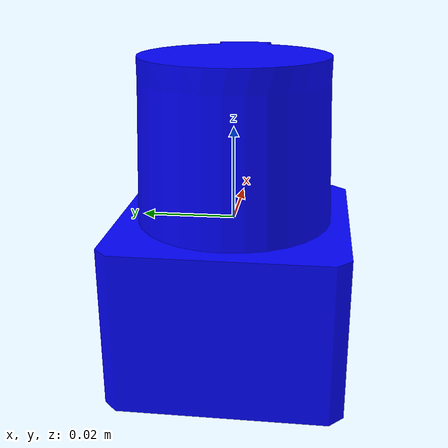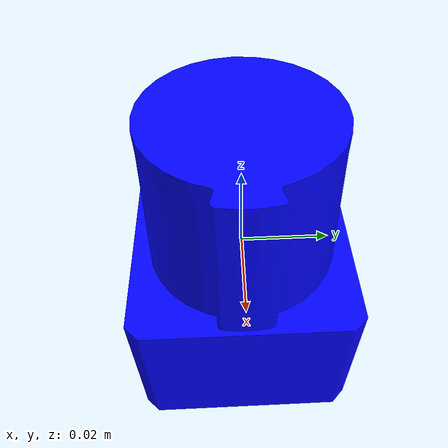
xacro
<?xml version="1.0"?>
<robot xmlns:xacro="http://www.ros.org/wiki/xacro" name="2dlaser3">
<!--xacro:macro name="two_d_laser3"-->
  <link name="2dlaser3_link">
    <inertial>
      <origin xyz="0.000969647464617474 7.47116257748814E-11 -0.00521270678518213" rpy="0 0 0" />
        <mass value="1e-5" />
        <inertia ixx="1e-6" ixy="0" ixz="0" iyy="1e-6" iyz="0" izz="1e-6" />
    </inertial>
    <visual>
      <origin xyz="0 0 0" rpy="0 0 0" />
      <geometry>
        <mesh filename="package://wheelchair_witharm_description/meshes/2dlaser3_link.STL" />
      </geometry>
      <material name="">
        <color rgba="0.00784313725490196 0.0117647058823529 1 1" />
      </material>
    </visual>
    <collision>
      <origin xyz="0 0 0" rpy="0 0 0" />
      <geometry>
        <mesh filename="package://wheelchair_witharm_description/meshes/2dlaser3_link.STL" />
      </geometry>
    </collision>
  </link>

 <!--/xacro:macro-->
</robot>
